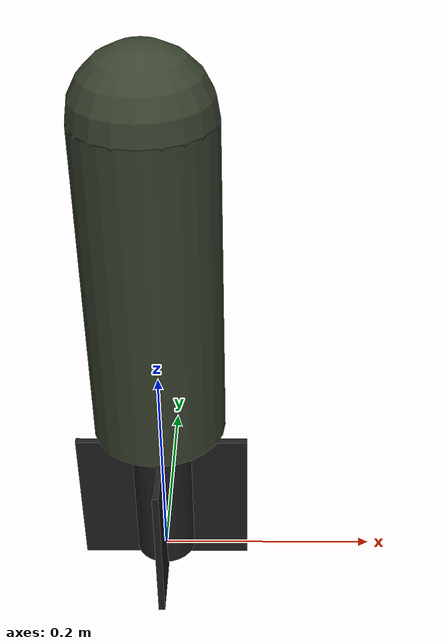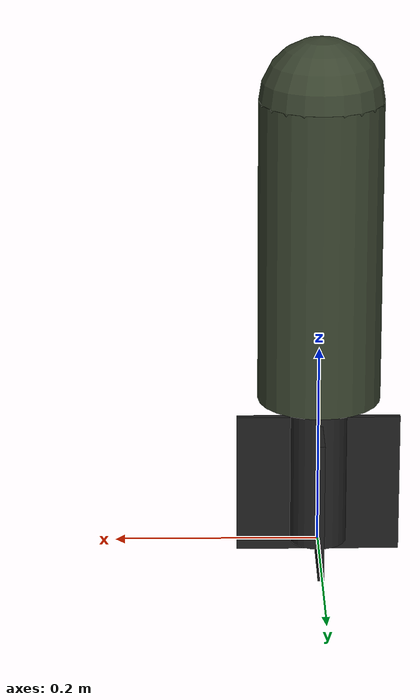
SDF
<?xml version="1.0" ?>
<sdf version="1.9">
  <model name="mortar_round">
    <link name="link">

      <!-- Inertia approximated as a solid cylinder:
           m=13 kg, r=0.06 m, L~0.5 m.
           Ixx=Iyy=(1/12)m(3r^2+L^2)~0.28 ; Izz=0.5 m r^2~0.023 -->
      <inertial>
        <pose>0 0 0.28 0 0 0</pose>
        <mass>13.0</mass>
        <inertia>
          <ixx>0.28</ixx>
          <iyy>0.28</iyy>
          <izz>0.023</izz>
          <ixy>0</ixy><ixz>0</ixz><iyz>0</iyz>
        </inertia>
      </inertial>

      <!-- ================= BODY ================= -->
      <visual name="body_visual">
        <pose>0 0 0.30 0 0 0</pose>
        <geometry><cylinder><radius>0.06</radius><length>0.30</length></cylinder></geometry>
        <material>
          <ambient>0.14 0.16 0.12 1</ambient>
          <diffuse>0.22 0.26 0.18 1</diffuse>
          <specular>0.10 0.10 0.10 1</specular>
        </material>
      </visual>

      <!-- rounded ogive nose (sphere sitting on top of the body) -->
      <visual name="nose_visual">
        <pose>0 0 0.45 0 0 0</pose>
        <geometry><sphere><radius>0.06</radius></sphere></geometry>
        <material>
          <ambient>0.14 0.16 0.12 1</ambient>
          <diffuse>0.22 0.26 0.18 1</diffuse>
        </material>
      </visual>

      <!-- ================= TAIL BOOM ================= -->
      <visual name="boom_visual">
        <pose>0 0 0.08 0 0 0</pose>
        <geometry><cylinder><radius>0.028</radius><length>0.16</length></cylinder></geometry>
        <material>
          <ambient>0.08 0.08 0.08 1</ambient>
          <diffuse>0.12 0.12 0.12 1</diffuse>
        </material>
      </visual>

      <!-- ================= CRUCIFORM FINS ================= -->
      <!-- two crossed vanes give a 4-fin look -->
      <visual name="fin_a_visual">
        <pose>0 0 0.06 0 0 0</pose>
        <geometry><box><size>0.16 0.006 0.14</size></box></geometry>
        <material>
          <ambient>0.08 0.08 0.08 1</ambient>
          <diffuse>0.12 0.12 0.12 1</diffuse>
        </material>
      </visual>
      <visual name="fin_b_visual">
        <pose>0 0 0.06 0 0 0</pose>
        <geometry><box><size>0.006 0.16 0.14</size></box></geometry>
        <material>
          <ambient>0.08 0.08 0.08 1</ambient>
          <diffuse>0.12 0.12 0.12 1</diffuse>
        </material>
      </visual>

      <!-- ================= COLLISION ================= -->
      <!-- one simple cylinder wrapping the whole round (cheap & stable) -->
      <collision name="collision">
        <pose>0 0 0.25 0 0 0</pose>
        <geometry><cylinder><radius>0.06</radius><length>0.5</length></cylinder></geometry>
      </collision>

    </link>
  </model>
</sdf>
